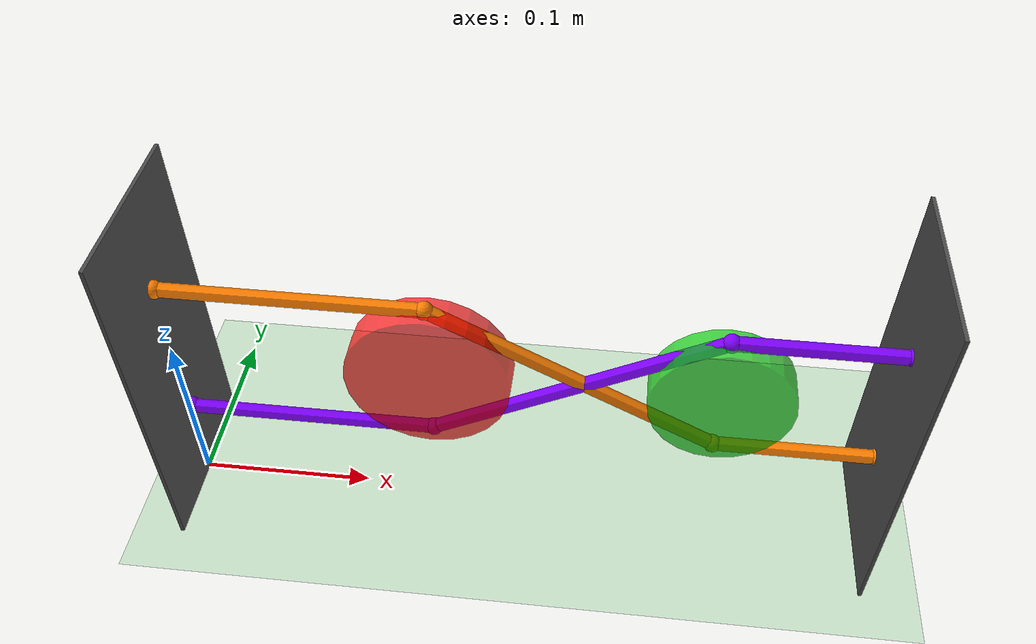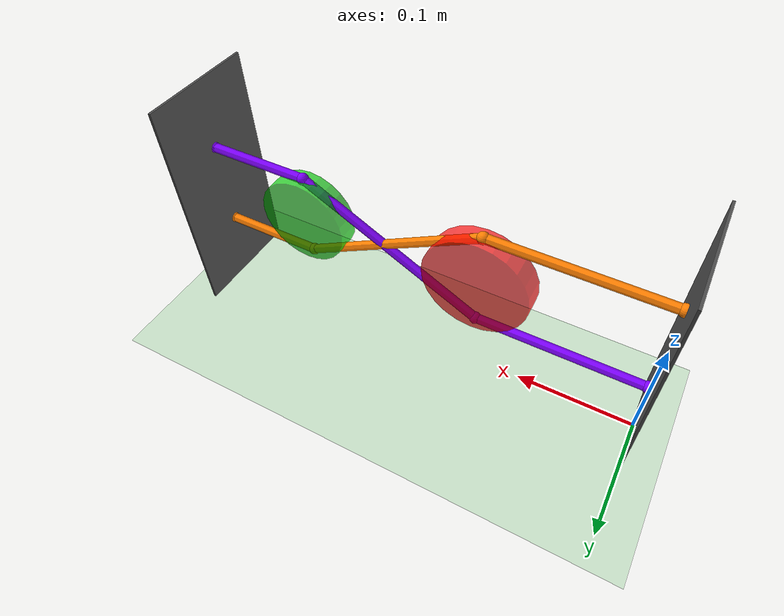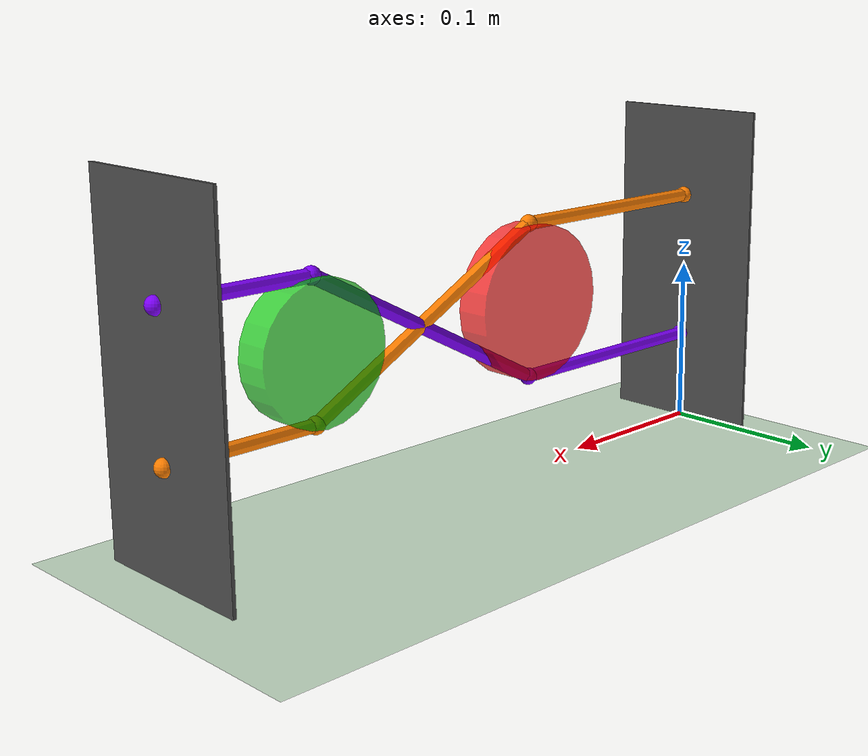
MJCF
<?xml version="1.0"?>
<mujoco>
    <option timestep="0.001"/>
    <option gravity="0 0 -9.8"/>

    <worldbody>
        <light pos="0 0 2"/>
        <geom name="ground" type="plane" size="1 1 0.1" rgba="0.8 0.9 0.8 1"/>
        <camera name="fixed" pos="0 -1.5 0.5" xyaxes="1 0 0 0 1 1"/>

        <!-- Левый базовый блок (неподвижный) -->
        <body name="base_O1" pos="0 0 0.1">
            <geom type="box" size="0.001 0.05 0.1" rgba="0.3 0.3 0.3 1"/>
            <site name="tendon1_start_top" pos="0.002 0 0.045" rgba="1 0.5 0 1" size="0.005"/>
            <site name="tendon2_start_bottom" pos="0.002 0 -0.045" rgba="0.5 0 1 1" size="0.005"/>
        </body>

        <!-- Первый шкив - ПОДВИЖНЫЙ по Z и ВРАЩАЕМЫЙ -->
        <body name="pulley1" pos="0.144 0 0.1">
            <joint name="joint1_slide" type="slide" axis="0 0 1" range="-0.05 0.05" damping="0.5"/>
            <joint name="joint1_rotate" type="hinge" axis="0 1 0" damping="0.3"/>
            <geom type="cylinder" size="0.045 0.01" rgba="1 0 0 0.7" euler="90 0 0" mass="0.2"/>
            <site name="pulley1_top" pos="0 0 0.045" rgba="1 0.5 0 1" size="0.005"/>
            <site name="pulley1_bottom" pos="0 0 -0.045" rgba="0.5 0 1 1" size="0.005"/>
        </body>

        <!-- Второй шкив - ПОДВИЖНЫЙ по Z и ВРАЩАЕМЫЙ -->
        <body name="pulley2" pos="0.3 0 0.1">
            <joint name="joint2_slide" type="slide" axis="0 0 1" range="-0.05 0.05" damping="0.5"/>
            <joint name="joint2_rotate" type="hinge" axis="0 1 0" damping="0.3"/>
            <geom type="cylinder" size="0.039 0.01" rgba="0 0.8 0 0.7" euler="90 0 0" mass="0.15"/>
            <site name="pulley2_top" pos="0 0 0.039" rgba="0.5 0 1 1" size="0.005"/>
            <site name="pulley2_bottom" pos="0 0 -0.039" rgba="1 0.5 0 1" size="0.005"/>
        </body>

        <!-- Правый базовый блок (ПОДВИЖНЫЙ) -->
        <body name="base_O2" pos="0.389 0 0.1">
            <joint name="base_slide" type="slide" axis="0 0 1" range="0 0.2" damping="1.0"/>
            <geom type="box" size="0.001 0.05 0.1" rgba="0.3 0.3 0.3 1" mass="1.5"/>
            <site name="tendon1_end_bottom" pos="0.001 0 -0.039" rgba="1 0.5 0 1" size="0.005"/>
            <site name="tendon2_end_top" pos="0.001 0 0.039" rgba="0.5 0 1 1" size="0.005"/>
        </body>
    </worldbody>

    <tendon>
        <!-- Тендоны со средней жесткостью -->
        <spatial name="tendon1" limited="true" range="0.3 0.7" width="0.004"
                 stiffness="15000" damping="30" rgba="1 0.5 0 1">
            <site site="tendon1_start_top"/>
            <site site="pulley1_top"/>
            <site site="pulley2_bottom"/>
            <site site="tendon1_end_bottom"/>
        </spatial>

        <spatial name="tendon2" limited="true" range="0.3 0.7" width="0.004"
                 stiffness="15000" damping="30" rgba="0.5 0 1 1">
            <site site="tendon2_start_bottom"/>
            <site site="pulley1_bottom"/>
            <site site="pulley2_top"/>
            <site site="tendon2_end_top"/>
        </spatial>
    </tendon>

    <actuator>
        <!-- ДВА ПРИВОДА для вращения шкивов -->
        <motor name="q1_motor" joint="joint1_rotate" gear="100" ctrllimited="true" ctrlrange="-8 8"/>
        <motor name="q2_motor" joint="joint2_rotate" gear="100" ctrllimited="true" ctrlrange="-8 8"/>

        <!-- Мягкие пружины для высоты шкивов (позволяют двигаться) -->
        <motor name="pulley1_height" joint="joint1_slide" gear="20" ctrllimited="true" ctrlrange="-10 10"/>
        <motor name="pulley2_height" joint="joint2_slide" gear="20" ctrllimited="true" ctrlrange="-10 10"/>
    </actuator>

    <sensor>
        <jointpos name="q1_position" joint="joint1_rotate"/>
        <jointvel name="q1_velocity" joint="joint1_rotate"/>
        <jointpos name="q2_position" joint="joint2_rotate"/>
        <jointvel name="q2_velocity" joint="joint2_rotate"/>
        <jointpos name="pulley1_height" joint="joint1_slide"/>
        <jointpos name="pulley2_height" joint="joint2_slide"/>
        <jointpos name="base_position" joint="base_slide"/>
        <tendonpos name="tendon1_length" tendon="tendon1"/>
        <tendonpos name="tendon2_length" tendon="tendon2"/>
    </sensor>

    <equality>
        <!-- Слабые пружины для стабилизации высоты шкивов -->
        <joint name="pulley1_height_spring" joint1="joint1_slide" polycoef="0 50 0 0"/>
        <joint name="pulley2_height_spring" joint1="joint2_slide" polycoef="0 40 0 0"/>
    </equality>
</mujoco>
